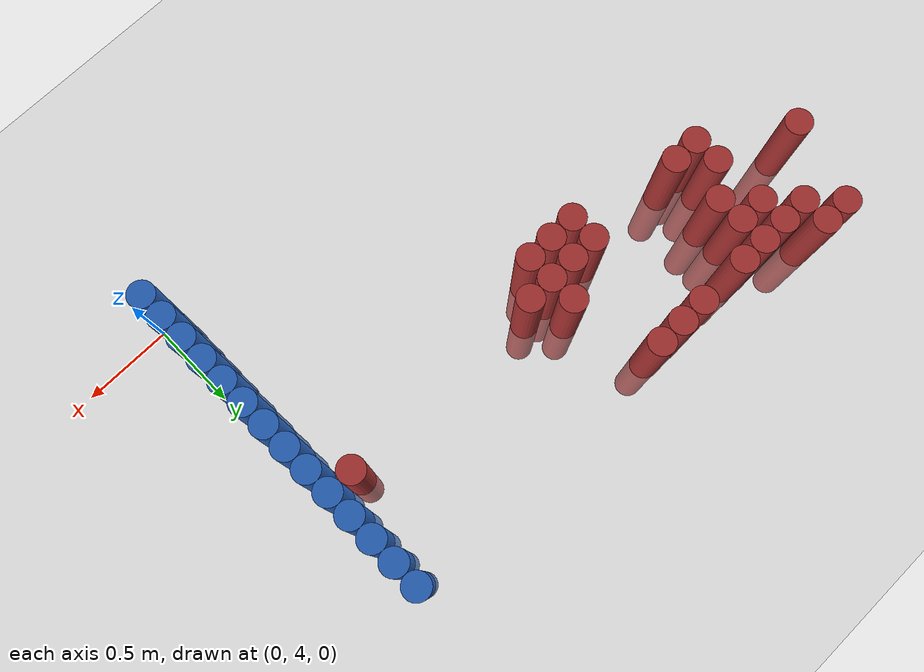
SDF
<sdf version="1.6">
 <world name="default">
  <model name="ground_plane">
   <static>1</static>
   <link name="link">
    <collision name="collision">
     <geometry><plane><normal>0 0 1</normal><size>100 100</size></plane></geometry>
     <surface><friction><ode><mu>100</mu><mu2>50</mu2></ode></friction></surface>
    </collision>
    <visual name="visual">
     <cast_shadows>0</cast_shadows>
     <geometry><plane><normal>0 0 1</normal><size>100 100</size></plane></geometry>
     <material>
      <script><uri>file://media/materials/scripts/gazebo.material</uri><name>Gazebo/Grey</name></script>
     </material>
    </visual>
   </link>
  </model>
  <model name="unit_cylinder_80">
   <static>1</static>
   <pose>-0.075000 3.975000 0.000000 0.000000 0.000000 0.000000</pose>
   <link name="link">
    <inertial>
     <mass>1</mass>
     <inertia><ixx>0.145833</ixx><ixy>0</ixy><ixz>0</ixz><iyy>0.145833</iyy><iyz>0</iyz><izz>0.125</izz></inertia>
    </inertial>
    <collision name="collision">
     <geometry><cylinder><radius>0.075000</radius><length>1</length></cylinder></geometry>
    </collision>
    <visual name="visual">
     <geometry><cylinder><radius>0.075000</radius><length>1</length></cylinder></geometry>
     <material>
      <ambient>0.152000 0.379000 0.720000 1</ambient>
      <diffuse>0.152000 0.379000 0.720000 1</diffuse>
     </material>
     <material>
      <script><name>Gazebo/Grey</name><uri>file://media/materials/scripts/gazebo.material</uri></script>
     </material>
    </visual>
    <sensor name="sensor_contact" type="contact"><contact><collision>collision</collision></contact></sensor>
   </link>
   <plugin filename="gz-sim-touchplugin-system" name="gz::sim::systems::TouchPlugin">
    <target>robot</target>
    <namespace>robot</namespace>
    <time>0.001</time>
    <enabled>true</enabled>
   </plugin>
  </model>
  <model name="unit_cylinder_82">
   <static>1</static>
   <pose>-0.075000 4.125000 0.000000 0.000000 0.000000 0.000000</pose>
   <link name="link">
    <inertial>
     <mass>1</mass>
     <inertia><ixx>0.145833</ixx><ixy>0</ixy><ixz>0</ixz><iyy>0.145833</iyy><iyz>0</iyz><izz>0.125</izz></inertia>
    </inertial>
    <collision name="collision">
     <geometry><cylinder><radius>0.075000</radius><length>1</length></cylinder></geometry>
    </collision>
    <visual name="visual">
     <geometry><cylinder><radius>0.075000</radius><length>1</length></cylinder></geometry>
     <material>
      <ambient>0.152000 0.379000 0.720000 1</ambient>
      <diffuse>0.152000 0.379000 0.720000 1</diffuse>
     </material>
     <material>
      <script><name>Gazebo/Grey</name><uri>file://media/materials/scripts/gazebo.material</uri></script>
     </material>
    </visual>
    <sensor name="sensor_contact" type="contact"><contact><collision>collision</collision></contact></sensor>
   </link>
   <plugin filename="gz-sim-touchplugin-system" name="gz::sim::systems::TouchPlugin">
    <target>robot</target>
    <namespace>robot</namespace>
    <time>0.001</time>
    <enabled>true</enabled>
   </plugin>
  </model>
  <model name="unit_cylinder_84">
   <static>1</static>
   <pose>-0.075000 4.275000 0.000000 0.000000 0.000000 0.000000</pose>
   <link name="link">
    <inertial>
     <mass>1</mass>
     <inertia><ixx>0.145833</ixx><ixy>0</ixy><ixz>0</ixz><iyy>0.145833</iyy><iyz>0</iyz><izz>0.125</izz></inertia>
    </inertial>
    <collision name="collision">
     <geometry><cylinder><radius>0.075000</radius><length>1</length></cylinder></geometry>
    </collision>
    <visual name="visual">
     <geometry><cylinder><radius>0.075000</radius><length>1</length></cylinder></geometry>
     <material>
      <ambient>0.152000 0.379000 0.720000 1</ambient>
      <diffuse>0.152000 0.379000 0.720000 1</diffuse>
     </material>
     <material>
      <script><name>Gazebo/Grey</name><uri>file://media/materials/scripts/gazebo.material</uri></script>
     </material>
    </visual>
    <sensor name="sensor_contact" type="contact"><contact><collision>collision</collision></contact></sensor>
   </link>
   <plugin filename="gz-sim-touchplugin-system" name="gz::sim::systems::TouchPlugin">
    <target>robot</target>
    <namespace>robot</namespace>
    <time>0.001</time>
    <enabled>true</enabled>
   </plugin>
  </model>
  <model name="unit_cylinder_86">
   <static>1</static>
   <pose>-0.075000 4.425000 0.000000 0.000000 0.000000 0.000000</pose>
   <link name="link">
    <inertial>
     <mass>1</mass>
     <inertia><ixx>0.145833</ixx><ixy>0</ixy><ixz>0</ixz><iyy>0.145833</iyy><iyz>0</iyz><izz>0.125</izz></inertia>
    </inertial>
    <collision name="collision">
     <geometry><cylinder><radius>0.075000</radius><length>1</length></cylinder></geometry>
    </collision>
    <visual name="visual">
     <geometry><cylinder><radius>0.075000</radius><length>1</length></cylinder></geometry>
     <material>
      <ambient>0.152000 0.379000 0.720000 1</ambient>
      <diffuse>0.152000 0.379000 0.720000 1</diffuse>
     </material>
     <material>
      <script><name>Gazebo/Grey</name><uri>file://media/materials/scripts/gazebo.material</uri></script>
     </material>
    </visual>
    <sensor name="sensor_contact" type="contact"><contact><collision>collision</collision></contact></sensor>
   </link>
   <plugin filename="gz-sim-touchplugin-system" name="gz::sim::systems::TouchPlugin">
    <target>robot</target>
    <namespace>robot</namespace>
    <time>0.001</time>
    <enabled>true</enabled>
   </plugin>
  </model>
  <model name="unit_cylinder_88">
   <static>1</static>
   <pose>-0.075000 4.575000 0.000000 0.000000 0.000000 0.000000</pose>
   <link name="link">
    <inertial>
     <mass>1</mass>
     <inertia><ixx>0.145833</ixx><ixy>0</ixy><ixz>0</ixz><iyy>0.145833</iyy><iyz>0</iyz><izz>0.125</izz></inertia>
    </inertial>
    <collision name="collision">
     <geometry><cylinder><radius>0.075000</radius><length>1</length></cylinder></geometry>
    </collision>
    <visual name="visual">
     <geometry><cylinder><radius>0.075000</radius><length>1</length></cylinder></geometry>
     <material>
      <ambient>0.152000 0.379000 0.720000 1</ambient>
      <diffuse>0.152000 0.379000 0.720000 1</diffuse>
     </material>
     <material>
      <script><name>Gazebo/Grey</name><uri>file://media/materials/scripts/gazebo.material</uri></script>
     </material>
    </visual>
    <sensor name="sensor_contact" type="contact"><contact><collision>collision</collision></contact></sensor>
   </link>
   <plugin filename="gz-sim-touchplugin-system" name="gz::sim::systems::TouchPlugin">
    <target>robot</target>
    <namespace>robot</namespace>
    <time>0.001</time>
    <enabled>true</enabled>
   </plugin>
  </model>
  <model name="unit_cylinder_90">
   <static>1</static>
   <pose>-0.075000 4.725000 0.000000 0.000000 0.000000 0.000000</pose>
   <link name="link">
    <inertial>
     <mass>1</mass>
     <inertia><ixx>0.145833</ixx><ixy>0</ixy><ixz>0</ixz><iyy>0.145833</iyy><iyz>0</iyz><izz>0.125</izz></inertia>
    </inertial>
    <collision name="collision">
     <geometry><cylinder><radius>0.075000</radius><length>1</length></cylinder></geometry>
    </collision>
    <visual name="visual">
     <geometry><cylinder><radius>0.075000</radius><length>1</length></cylinder></geometry>
     <material>
      <ambient>0.152000 0.379000 0.720000 1</ambient>
      <diffuse>0.152000 0.379000 0.720000 1</diffuse>
     </material>
     <material>
      <script><name>Gazebo/Grey</name><uri>file://media/materials/scripts/gazebo.material</uri></script>
     </material>
    </visual>
    <sensor name="sensor_contact" type="contact"><contact><collision>collision</collision></contact></sensor>
   </link>
   <plugin filename="gz-sim-touchplugin-system" name="gz::sim::systems::TouchPlugin">
    <target>robot</target>
    <namespace>robot</namespace>
    <time>0.001</time>
    <enabled>true</enabled>
   </plugin>
  </model>
  <model name="unit_cylinder_92">
   <static>1</static>
   <pose>-0.075000 4.875000 0.000000 0.000000 0.000000 0.000000</pose>
   <link name="link">
    <inertial>
     <mass>1</mass>
     <inertia><ixx>0.145833</ixx><ixy>0</ixy><ixz>0</ixz><iyy>0.145833</iyy><iyz>0</iyz><izz>0.125</izz></inertia>
    </inertial>
    <collision name="collision">
     <geometry><cylinder><radius>0.075000</radius><length>1</length></cylinder></geometry>
    </collision>
    <visual name="visual">
     <geometry><cylinder><radius>0.075000</radius><length>1</length></cylinder></geometry>
     <material>
      <ambient>0.152000 0.379000 0.720000 1</ambient>
      <diffuse>0.152000 0.379000 0.720000 1</diffuse>
     </material>
     <material>
      <script><name>Gazebo/Grey</name><uri>file://media/materials/scripts/gazebo.material</uri></script>
     </material>
    </visual>
    <sensor name="sensor_contact" type="contact"><contact><collision>collision</collision></contact></sensor>
   </link>
   <plugin filename="gz-sim-touchplugin-system" name="gz::sim::systems::TouchPlugin">
    <target>robot</target>
    <namespace>robot</namespace>
    <time>0.001</time>
    <enabled>true</enabled>
   </plugin>
  </model>
  <model name="unit_cylinder_94">
   <static>1</static>
   <pose>-0.075000 5.025000 0.000000 0.000000 0.000000 0.000000</pose>
   <link name="link">
    <inertial>
     <mass>1</mass>
     <inertia><ixx>0.145833</ixx><ixy>0</ixy><ixz>0</ixz><iyy>0.145833</iyy><iyz>0</iyz><izz>0.125</izz></inertia>
    </inertial>
    <collision name="collision">
     <geometry><cylinder><radius>0.075000</radius><length>1</length></cylinder></geometry>
    </collision>
    <visual name="visual">
     <geometry><cylinder><radius>0.075000</radius><length>1</length></cylinder></geometry>
     <material>
      <ambient>0.152000 0.379000 0.720000 1</ambient>
      <diffuse>0.152000 0.379000 0.720000 1</diffuse>
     </material>
     <material>
      <script><name>Gazebo/Grey</name><uri>file://media/materials/scripts/gazebo.material</uri></script>
     </material>
    </visual>
    <sensor name="sensor_contact" type="contact"><contact><collision>collision</collision></contact></sensor>
   </link>
   <plugin filename="gz-sim-touchplugin-system" name="gz::sim::systems::TouchPlugin">
    <target>robot</target>
    <namespace>robot</namespace>
    <time>0.001</time>
    <enabled>true</enabled>
   </plugin>
  </model>
  <model name="unit_cylinder_200">
   <static>1</static>
   <pose>-3.075000 5.625000 0.000000 0.000000 0.000000 0.000000</pose>
   <link name="link">
    <inertial>
     <mass>1</mass>
     <inertia><ixx>0.145833</ixx><ixy>0</ixy><ixz>0</ixz><iyy>0.145833</iyy><iyz>0</iyz><izz>0.125</izz></inertia>
    </inertial>
    <collision name="collision">
     <geometry><cylinder><radius>0.075000</radius><length>1</length></cylinder></geometry>
    </collision>
    <visual name="visual">
     <geometry><cylinder><radius>0.075000</radius><length>1</length></cylinder></geometry>
     <material>
      <ambient>0.648000 0.192000 0.192000 1</ambient>
      <diffuse>0.648000 0.192000 0.192000 1</diffuse>
     </material>
     <material>
      <script><name>Gazebo/Grey</name><uri>file://media/materials/scripts/gazebo.material</uri></script>
     </material>
    </visual>
    <sensor name="sensor_contact" type="contact"><contact><collision>collision</collision></contact></sensor>
   </link>
   <plugin filename="gz-sim-touchplugin-system" name="gz::sim::systems::TouchPlugin">
    <target>robot</target>
    <namespace>robot</namespace>
    <time>0.001</time>
    <enabled>true</enabled>
   </plugin>
  </model>
  <model name="unit_cylinder_207">
   <static>1</static>
   <pose>-2.925000 6.075000 0.000000 0.000000 0.000000 0.000000</pose>
   <link name="link">
    <inertial>
     <mass>1</mass>
     <inertia><ixx>0.145833</ixx><ixy>0</ixy><ixz>0</ixz><iyy>0.145833</iyy><iyz>0</iyz><izz>0.125</izz></inertia>
    </inertial>
    <collision name="collision">
     <geometry><cylinder><radius>0.075000</radius><length>1</length></cylinder></geometry>
    </collision>
    <visual name="visual">
     <geometry><cylinder><radius>0.075000</radius><length>1</length></cylinder></geometry>
     <material>
      <ambient>0.648000 0.192000 0.192000 1</ambient>
      <diffuse>0.648000 0.192000 0.192000 1</diffuse>
     </material>
     <material>
      <script><name>Gazebo/Grey</name><uri>file://media/materials/scripts/gazebo.material</uri></script>
     </material>
    </visual>
    <sensor name="sensor_contact" type="contact"><contact><collision>collision</collision></contact></sensor>
   </link>
   <plugin filename="gz-sim-touchplugin-system" name="gz::sim::systems::TouchPlugin">
    <target>robot</target>
    <namespace>robot</namespace>
    <time>0.001</time>
    <enabled>true</enabled>
   </plugin>
  </model>
  <model name="unit_cylinder_214">
   <static>1</static>
   <pose>-2.775000 5.925000 0.000000 0.000000 0.000000 0.000000</pose>
   <link name="link">
    <inertial>
     <mass>1</mass>
     <inertia><ixx>0.145833</ixx><ixy>0</ixy><ixz>0</ixz><iyy>0.145833</iyy><iyz>0</iyz><izz>0.125</izz></inertia>
    </inertial>
    <collision name="collision">
     <geometry><cylinder><radius>0.075000</radius><length>1</length></cylinder></geometry>
    </collision>
    <visual name="visual">
     <geometry><cylinder><radius>0.075000</radius><length>1</length></cylinder></geometry>
     <material>
      <ambient>0.648000 0.192000 0.192000 1</ambient>
      <diffuse>0.648000 0.192000 0.192000 1</diffuse>
     </material>
     <material>
      <script><name>Gazebo/Grey</name><uri>file://media/materials/scripts/gazebo.material</uri></script>
     </material>
    </visual>
    <sensor name="sensor_contact" type="contact"><contact><collision>collision</collision></contact></sensor>
   </link>
   <plugin filename="gz-sim-touchplugin-system" name="gz::sim::systems::TouchPlugin">
    <target>robot</target>
    <namespace>robot</namespace>
    <time>0.001</time>
    <enabled>true</enabled>
   </plugin>
  </model>
  <model name="unit_cylinder_215">
   <static>1</static>
   <pose>-2.775000 6.075000 0.000000 0.000000 0.000000 0.000000</pose>
   <link name="link">
    <inertial>
     <mass>1</mass>
     <inertia><ixx>0.145833</ixx><ixy>0</ixy><ixz>0</ixz><iyy>0.145833</iyy><iyz>0</iyz><izz>0.125</izz></inertia>
    </inertial>
    <collision name="collision">
     <geometry><cylinder><radius>0.075000</radius><length>1</length></cylinder></geometry>
    </collision>
    <visual name="visual">
     <geometry><cylinder><radius>0.075000</radius><length>1</length></cylinder></geometry>
     <material>
      <ambient>0.648000 0.192000 0.192000 1</ambient>
      <diffuse>0.648000 0.192000 0.192000 1</diffuse>
     </material>
     <material>
      <script><name>Gazebo/Grey</name><uri>file://media/materials/scripts/gazebo.material</uri></script>
     </material>
    </visual>
    <sensor name="sensor_contact" type="contact"><contact><collision>collision</collision></contact></sensor>
   </link>
   <plugin filename="gz-sim-touchplugin-system" name="gz::sim::systems::TouchPlugin">
    <target>robot</target>
    <namespace>robot</namespace>
    <time>0.001</time>
    <enabled>true</enabled>
   </plugin>
  </model>
  <model name="unit_cylinder_220">
   <static>1</static>
   <pose>-2.625000 5.325000 0.000000 0.000000 0.000000 0.000000</pose>
   <link name="link">
    <inertial>
     <mass>1</mass>
     <inertia><ixx>0.145833</ixx><ixy>0</ixy><ixz>0</ixz><iyy>0.145833</iyy><iyz>0</iyz><izz>0.125</izz></inertia>
    </inertial>
    <collision name="collision">
     <geometry><cylinder><radius>0.075000</radius><length>1</length></cylinder></geometry>
    </collision>
    <visual name="visual">
     <geometry><cylinder><radius>0.075000</radius><length>1</length></cylinder></geometry>
     <material>
      <ambient>0.648000 0.192000 0.192000 1</ambient>
      <diffuse>0.648000 0.192000 0.192000 1</diffuse>
     </material>
     <material>
      <script><name>Gazebo/Grey</name><uri>file://media/materials/scripts/gazebo.material</uri></script>
     </material>
    </visual>
    <sensor name="sensor_contact" type="contact"><contact><collision>collision</collision></contact></sensor>
   </link>
   <plugin filename="gz-sim-touchplugin-system" name="gz::sim::systems::TouchPlugin">
    <target>robot</target>
    <namespace>robot</namespace>
    <time>0.001</time>
    <enabled>true</enabled>
   </plugin>
  </model>
  <model name="unit_cylinder_221">
   <static>1</static>
   <pose>-2.625000 5.475000 0.000000 0.000000 0.000000 0.000000</pose>
   <link name="link">
    <inertial>
     <mass>1</mass>
     <inertia><ixx>0.145833</ixx><ixy>0</ixy><ixz>0</ixz><iyy>0.145833</iyy><iyz>0</iyz><izz>0.125</izz></inertia>
    </inertial>
    <collision name="collision">
     <geometry><cylinder><radius>0.075000</radius><length>1</length></cylinder></geometry>
    </collision>
    <visual name="visual">
     <geometry><cylinder><radius>0.075000</radius><length>1</length></cylinder></geometry>
     <material>
      <ambient>0.648000 0.192000 0.192000 1</ambient>
      <diffuse>0.648000 0.192000 0.192000 1</diffuse>
     </material>
     <material>
      <script><name>Gazebo/Grey</name><uri>file://media/materials/scripts/gazebo.material</uri></script>
     </material>
    </visual>
    <sensor name="sensor_contact" type="contact"><contact><collision>collision</collision></contact></sensor>
   </link>
   <plugin filename="gz-sim-touchplugin-system" name="gz::sim::systems::TouchPlugin">
    <target>robot</target>
    <namespace>robot</namespace>
    <time>0.001</time>
    <enabled>true</enabled>
   </plugin>
  </model>
  <model name="unit_cylinder_222">
   <static>1</static>
   <pose>-2.625000 5.775000 0.000000 0.000000 0.000000 0.000000</pose>
   <link name="link">
    <inertial>
     <mass>1</mass>
     <inertia><ixx>0.145833</ixx><ixy>0</ixy><ixz>0</ixz><iyy>0.145833</iyy><iyz>0</iyz><izz>0.125</izz></inertia>
    </inertial>
    <collision name="collision">
     <geometry><cylinder><radius>0.075000</radius><length>1</length></cylinder></geometry>
    </collision>
    <visual name="visual">
     <geometry><cylinder><radius>0.075000</radius><length>1</length></cylinder></geometry>
     <material>
      <ambient>0.648000 0.192000 0.192000 1</ambient>
      <diffuse>0.648000 0.192000 0.192000 1</diffuse>
     </material>
     <material>
      <script><name>Gazebo/Grey</name><uri>file://media/materials/scripts/gazebo.material</uri></script>
     </material>
    </visual>
    <sensor name="sensor_contact" type="contact"><contact><collision>collision</collision></contact></sensor>
   </link>
   <plugin filename="gz-sim-touchplugin-system" name="gz::sim::systems::TouchPlugin">
    <target>robot</target>
    <namespace>robot</namespace>
    <time>0.001</time>
    <enabled>true</enabled>
   </plugin>
  </model>
  <model name="unit_cylinder_223">
   <static>1</static>
   <pose>-2.625000 5.925000 0.000000 0.000000 0.000000 0.000000</pose>
   <link name="link">
    <inertial>
     <mass>1</mass>
     <inertia><ixx>0.145833</ixx><ixy>0</ixy><ixz>0</ixz><iyy>0.145833</iyy><iyz>0</iyz><izz>0.125</izz></inertia>
    </inertial>
    <collision name="collision">
     <geometry><cylinder><radius>0.075000</radius><length>1</length></cylinder></geometry>
    </collision>
    <visual name="visual">
     <geometry><cylinder><radius>0.075000</radius><length>1</length></cylinder></geometry>
     <material>
      <ambient>0.648000 0.192000 0.192000 1</ambient>
      <diffuse>0.648000 0.192000 0.192000 1</diffuse>
     </material>
     <material>
      <script><name>Gazebo/Grey</name><uri>file://media/materials/scripts/gazebo.material</uri></script>
     </material>
    </visual>
    <sensor name="sensor_contact" type="contact"><contact><collision>collision</collision></contact></sensor>
   </link>
   <plugin filename="gz-sim-touchplugin-system" name="gz::sim::systems::TouchPlugin">
    <target>robot</target>
    <namespace>robot</namespace>
    <time>0.001</time>
    <enabled>true</enabled>
   </plugin>
  </model>
  <model name="unit_cylinder_231">
   <static>1</static>
   <pose>-2.475000 5.325000 0.000000 0.000000 0.000000 0.000000</pose>
   <link name="link">
    <inertial>
     <mass>1</mass>
     <inertia><ixx>0.145833</ixx><ixy>0</ixy><ixz>0</ixz><iyy>0.145833</iyy><iyz>0</iyz><izz>0.125</izz></inertia>
    </inertial>
    <collision name="collision">
     <geometry><cylinder><radius>0.075000</radius><length>1</length></cylinder></geometry>
    </collision>
    <visual name="visual">
     <geometry><cylinder><radius>0.075000</radius><length>1</length></cylinder></geometry>
     <material>
      <ambient>0.648000 0.192000 0.192000 1</ambient>
      <diffuse>0.648000 0.192000 0.192000 1</diffuse>
     </material>
     <material>
      <script><name>Gazebo/Grey</name><uri>file://media/materials/scripts/gazebo.material</uri></script>
     </material>
    </visual>
    <sensor name="sensor_contact" type="contact"><contact><collision>collision</collision></contact></sensor>
   </link>
   <plugin filename="gz-sim-touchplugin-system" name="gz::sim::systems::TouchPlugin">
    <target>robot</target>
    <namespace>robot</namespace>
    <time>0.001</time>
    <enabled>true</enabled>
   </plugin>
  </model>
  <model name="unit_cylinder_232">
   <static>1</static>
   <pose>-2.475000 5.625000 0.000000 0.000000 0.000000 0.000000</pose>
   <link name="link">
    <inertial>
     <mass>1</mass>
     <inertia><ixx>0.145833</ixx><ixy>0</ixy><ixz>0</ixz><iyy>0.145833</iyy><iyz>0</iyz><izz>0.125</izz></inertia>
    </inertial>
    <collision name="collision">
     <geometry><cylinder><radius>0.075000</radius><length>1</length></cylinder></geometry>
    </collision>
    <visual name="visual">
     <geometry><cylinder><radius>0.075000</radius><length>1</length></cylinder></geometry>
     <material>
      <ambient>0.648000 0.192000 0.192000 1</ambient>
      <diffuse>0.648000 0.192000 0.192000 1</diffuse>
     </material>
     <material>
      <script><name>Gazebo/Grey</name><uri>file://media/materials/scripts/gazebo.material</uri></script>
     </material>
    </visual>
    <sensor name="sensor_contact" type="contact"><contact><collision>collision</collision></contact></sensor>
   </link>
   <plugin filename="gz-sim-touchplugin-system" name="gz::sim::systems::TouchPlugin">
    <target>robot</target>
    <namespace>robot</namespace>
    <time>0.001</time>
    <enabled>true</enabled>
   </plugin>
  </model>
  <model name="unit_cylinder_233">
   <static>1</static>
   <pose>-2.475000 5.775000 0.000000 0.000000 0.000000 0.000000</pose>
   <link name="link">
    <inertial>
     <mass>1</mass>
     <inertia><ixx>0.145833</ixx><ixy>0</ixy><ixz>0</ixz><iyy>0.145833</iyy><iyz>0</iyz><izz>0.125</izz></inertia>
    </inertial>
    <collision name="collision">
     <geometry><cylinder><radius>0.075000</radius><length>1</length></cylinder></geometry>
    </collision>
    <visual name="visual">
     <geometry><cylinder><radius>0.075000</radius><length>1</length></cylinder></geometry>
     <material>
      <ambient>0.648000 0.192000 0.192000 1</ambient>
      <diffuse>0.648000 0.192000 0.192000 1</diffuse>
     </material>
     <material>
      <script><name>Gazebo/Grey</name><uri>file://media/materials/scripts/gazebo.material</uri></script>
     </material>
    </visual>
    <sensor name="sensor_contact" type="contact"><contact><collision>collision</collision></contact></sensor>
   </link>
   <plugin filename="gz-sim-touchplugin-system" name="gz::sim::systems::TouchPlugin">
    <target>robot</target>
    <namespace>robot</namespace>
    <time>0.001</time>
    <enabled>true</enabled>
   </plugin>
  </model>
  <model name="unit_cylinder_234">
   <static>1</static>
   <pose>-2.475000 5.925000 0.000000 0.000000 0.000000 0.000000</pose>
   <link name="link">
    <inertial>
     <mass>1</mass>
     <inertia><ixx>0.145833</ixx><ixy>0</ixy><ixz>0</ixz><iyy>0.145833</iyy><iyz>0</iyz><izz>0.125</izz></inertia>
    </inertial>
    <collision name="collision">
     <geometry><cylinder><radius>0.075000</radius><length>1</length></cylinder></geometry>
    </collision>
    <visual name="visual">
     <geometry><cylinder><radius>0.075000</radius><length>1</length></cylinder></geometry>
     <material>
      <ambient>0.648000 0.192000 0.192000 1</ambient>
      <diffuse>0.648000 0.192000 0.192000 1</diffuse>
     </material>
     <material>
      <script><name>Gazebo/Grey</name><uri>file://media/materials/scripts/gazebo.material</uri></script>
     </material>
    </visual>
    <sensor name="sensor_contact" type="contact"><contact><collision>collision</collision></contact></sensor>
   </link>
   <plugin filename="gz-sim-touchplugin-system" name="gz::sim::systems::TouchPlugin">
    <target>robot</target>
    <namespace>robot</namespace>
    <time>0.001</time>
    <enabled>true</enabled>
   </plugin>
  </model>
  <model name="unit_cylinder_245">
   <static>1</static>
   <pose>-2.325000 5.925000 0.000000 0.000000 0.000000 0.000000</pose>
   <link name="link">
    <inertial>
     <mass>1</mass>
     <inertia><ixx>0.145833</ixx><ixy>0</ixy><ixz>0</ixz><iyy>0.145833</iyy><iyz>0</iyz><izz>0.125</izz></inertia>
    </inertial>
    <collision name="collision">
     <geometry><cylinder><radius>0.075000</radius><length>1</length></cylinder></geometry>
    </collision>
    <visual name="visual">
     <geometry><cylinder><radius>0.075000</radius><length>1</length></cylinder></geometry>
     <material>
      <ambient>0.648000 0.192000 0.192000 1</ambient>
      <diffuse>0.648000 0.192000 0.192000 1</diffuse>
     </material>
     <material>
      <script><name>Gazebo/Grey</name><uri>file://media/materials/scripts/gazebo.material</uri></script>
     </material>
    </visual>
    <sensor name="sensor_contact" type="contact"><contact><collision>collision</collision></contact></sensor>
   </link>
   <plugin filename="gz-sim-touchplugin-system" name="gz::sim::systems::TouchPlugin">
    <target>robot</target>
    <namespace>robot</namespace>
    <time>0.001</time>
    <enabled>true</enabled>
   </plugin>
  </model>
  <model name="unit_cylinder_256">
   <static>1</static>
   <pose>-2.025000 5.925000 0.000000 0.000000 0.000000 0.000000</pose>
   <link name="link">
    <inertial>
     <mass>1</mass>
     <inertia><ixx>0.145833</ixx><ixy>0</ixy><ixz>0</ixz><iyy>0.145833</iyy><iyz>0</iyz><izz>0.125</izz></inertia>
    </inertial>
    <collision name="collision">
     <geometry><cylinder><radius>0.075000</radius><length>1</length></cylinder></geometry>
    </collision>
    <visual name="visual">
     <geometry><cylinder><radius>0.075000</radius><length>1</length></cylinder></geometry>
     <material>
      <ambient>0.648000 0.192000 0.192000 1</ambient>
      <diffuse>0.648000 0.192000 0.192000 1</diffuse>
     </material>
     <material>
      <script><name>Gazebo/Grey</name><uri>file://media/materials/scripts/gazebo.material</uri></script>
     </material>
    </visual>
    <sensor name="sensor_contact" type="contact"><contact><collision>collision</collision></contact></sensor>
   </link>
   <plugin filename="gz-sim-touchplugin-system" name="gz::sim::systems::TouchPlugin">
    <target>robot</target>
    <namespace>robot</namespace>
    <time>0.001</time>
    <enabled>true</enabled>
   </plugin>
  </model>
  <model name="unit_cylinder_260">
   <static>1</static>
   <pose>-1.875000 5.175000 0.000000 0.000000 0.000000 0.000000</pose>
   <link name="link">
    <inertial>
     <mass>1</mass>
     <inertia><ixx>0.145833</ixx><ixy>0</ixy><ixz>0</ixz><iyy>0.145833</iyy><iyz>0</iyz><izz>0.125</izz></inertia>
    </inertial>
    <collision name="collision">
     <geometry><cylinder><radius>0.075000</radius><length>1</length></cylinder></geometry>
    </collision>
    <visual name="visual">
     <geometry><cylinder><radius>0.075000</radius><length>1</length></cylinder></geometry>
     <material>
      <ambient>0.648000 0.192000 0.192000 1</ambient>
      <diffuse>0.648000 0.192000 0.192000 1</diffuse>
     </material>
     <material>
      <script><name>Gazebo/Grey</name><uri>file://media/materials/scripts/gazebo.material</uri></script>
     </material>
    </visual>
    <sensor name="sensor_contact" type="contact"><contact><collision>collision</collision></contact></sensor>
   </link>
   <plugin filename="gz-sim-touchplugin-system" name="gz::sim::systems::TouchPlugin">
    <target>robot</target>
    <namespace>robot</namespace>
    <time>0.001</time>
    <enabled>true</enabled>
   </plugin>
  </model>
  <model name="unit_cylinder_261">
   <static>1</static>
   <pose>-1.875000 5.325000 0.000000 0.000000 0.000000 0.000000</pose>
   <link name="link">
    <inertial>
     <mass>1</mass>
     <inertia><ixx>0.145833</ixx><ixy>0</ixy><ixz>0</ixz><iyy>0.145833</iyy><iyz>0</iyz><izz>0.125</izz></inertia>
    </inertial>
    <collision name="collision">
     <geometry><cylinder><radius>0.075000</radius><length>1</length></cylinder></geometry>
    </collision>
    <visual name="visual">
     <geometry><cylinder><radius>0.075000</radius><length>1</length></cylinder></geometry>
     <material>
      <ambient>0.648000 0.192000 0.192000 1</ambient>
      <diffuse>0.648000 0.192000 0.192000 1</diffuse>
     </material>
     <material>
      <script><name>Gazebo/Grey</name><uri>file://media/materials/scripts/gazebo.material</uri></script>
     </material>
    </visual>
    <sensor name="sensor_contact" type="contact"><contact><collision>collision</collision></contact></sensor>
   </link>
   <plugin filename="gz-sim-touchplugin-system" name="gz::sim::systems::TouchPlugin">
    <target>robot</target>
    <namespace>robot</namespace>
    <time>0.001</time>
    <enabled>true</enabled>
   </plugin>
  </model>
  <model name="unit_cylinder_262">
   <static>1</static>
   <pose>-1.875000 5.925000 0.000000 0.000000 0.000000 0.000000</pose>
   <link name="link">
    <inertial>
     <mass>1</mass>
     <inertia><ixx>0.145833</ixx><ixy>0</ixy><ixz>0</ixz><iyy>0.145833</iyy><iyz>0</iyz><izz>0.125</izz></inertia>
    </inertial>
    <collision name="collision">
     <geometry><cylinder><radius>0.075000</radius><length>1</length></cylinder></geometry>
    </collision>
    <visual name="visual">
     <geometry><cylinder><radius>0.075000</radius><length>1</length></cylinder></geometry>
     <material>
      <ambient>0.648000 0.192000 0.192000 1</ambient>
      <diffuse>0.648000 0.192000 0.192000 1</diffuse>
     </material>
     <material>
      <script><name>Gazebo/Grey</name><uri>file://media/materials/scripts/gazebo.material</uri></script>
     </material>
    </visual>
    <sensor name="sensor_contact" type="contact"><contact><collision>collision</collision></contact></sensor>
   </link>
   <plugin filename="gz-sim-touchplugin-system" name="gz::sim::systems::TouchPlugin">
    <target>robot</target>
    <namespace>robot</namespace>
    <time>0.001</time>
    <enabled>true</enabled>
   </plugin>
  </model>
  <model name="unit_cylinder_264">
   <static>1</static>
   <pose>-1.725000 5.175000 0.000000 0.000000 0.000000 0.000000</pose>
   <link name="link">
    <inertial>
     <mass>1</mass>
     <inertia><ixx>0.145833</ixx><ixy>0</ixy><ixz>0</ixz><iyy>0.145833</iyy><iyz>0</iyz><izz>0.125</izz></inertia>
    </inertial>
    <collision name="collision">
     <geometry><cylinder><radius>0.075000</radius><length>1</length></cylinder></geometry>
    </collision>
    <visual name="visual">
     <geometry><cylinder><radius>0.075000</radius><length>1</length></cylinder></geometry>
     <material>
      <ambient>0.648000 0.192000 0.192000 1</ambient>
      <diffuse>0.648000 0.192000 0.192000 1</diffuse>
     </material>
     <material>
      <script><name>Gazebo/Grey</name><uri>file://media/materials/scripts/gazebo.material</uri></script>
     </material>
    </visual>
    <sensor name="sensor_contact" type="contact"><contact><collision>collision</collision></contact></sensor>
   </link>
   <plugin filename="gz-sim-touchplugin-system" name="gz::sim::systems::TouchPlugin">
    <target>robot</target>
    <namespace>robot</namespace>
    <time>0.001</time>
    <enabled>true</enabled>
   </plugin>
  </model>
  <model name="unit_cylinder_265">
   <static>1</static>
   <pose>-1.725000 5.325000 0.000000 0.000000 0.000000 0.000000</pose>
   <link name="link">
    <inertial>
     <mass>1</mass>
     <inertia><ixx>0.145833</ixx><ixy>0</ixy><ixz>0</ixz><iyy>0.145833</iyy><iyz>0</iyz><izz>0.125</izz></inertia>
    </inertial>
    <collision name="collision">
     <geometry><cylinder><radius>0.075000</radius><length>1</length></cylinder></geometry>
    </collision>
    <visual name="visual">
     <geometry><cylinder><radius>0.075000</radius><length>1</length></cylinder></geometry>
     <material>
      <ambient>0.648000 0.192000 0.192000 1</ambient>
      <diffuse>0.648000 0.192000 0.192000 1</diffuse>
     </material>
     <material>
      <script><name>Gazebo/Grey</name><uri>file://media/materials/scripts/gazebo.material</uri></script>
     </material>
    </visual>
    <sensor name="sensor_contact" type="contact"><contact><collision>collision</collision></contact></sensor>
   </link>
   <plugin filename="gz-sim-touchplugin-system" name="gz::sim::systems::TouchPlugin">
    <target>robot</target>
    <namespace>robot</namespace>
    <time>0.001</time>
    <enabled>true</enabled>
   </plugin>
  </model>
  <model name="unit_cylinder_266">
   <static>1</static>
   <pose>-1.725000 5.925000 0.000000 0.000000 0.000000 0.000000</pose>
   <link name="link">
    <inertial>
     <mass>1</mass>
     <inertia><ixx>0.145833</ixx><ixy>0</ixy><ixz>0</ixz><iyy>0.145833</iyy><iyz>0</iyz><izz>0.125</izz></inertia>
    </inertial>
    <collision name="collision">
     <geometry><cylinder><radius>0.075000</radius><length>1</length></cylinder></geometry>
    </collision>
    <visual name="visual">
     <geometry><cylinder><radius>0.075000</radius><length>1</length></cylinder></geometry>
     <material>
      <ambient>0.648000 0.192000 0.192000 1</ambient>
      <diffuse>0.648000 0.192000 0.192000 1</diffuse>
     </material>
     <material>
      <script><name>Gazebo/Grey</name><uri>file://media/materials/scripts/gazebo.material</uri></script>
     </material>
    </visual>
    <sensor name="sensor_contact" type="contact"><contact><collision>collision</collision></contact></sensor>
   </link>
   <plugin filename="gz-sim-touchplugin-system" name="gz::sim::systems::TouchPlugin">
    <target>robot</target>
    <namespace>robot</namespace>
    <time>0.001</time>
    <enabled>true</enabled>
   </plugin>
  </model>
  <model name="unit_cylinder_269">
   <static>1</static>
   <pose>-1.575000 5.175000 0.000000 0.000000 0.000000 0.000000</pose>
   <link name="link">
    <inertial>
     <mass>1</mass>
     <inertia><ixx>0.145833</ixx><ixy>0</ixy><ixz>0</ixz><iyy>0.145833</iyy><iyz>0</iyz><izz>0.125</izz></inertia>
    </inertial>
    <collision name="collision">
     <geometry><cylinder><radius>0.075000</radius><length>1</length></cylinder></geometry>
    </collision>
    <visual name="visual">
     <geometry><cylinder><radius>0.075000</radius><length>1</length></cylinder></geometry>
     <material>
      <ambient>0.648000 0.192000 0.192000 1</ambient>
      <diffuse>0.648000 0.192000 0.192000 1</diffuse>
     </material>
     <material>
      <script><name>Gazebo/Grey</name><uri>file://media/materials/scripts/gazebo.material</uri></script>
     </material>
    </visual>
    <sensor name="sensor_contact" type="contact"><contact><collision>collision</collision></contact></sensor>
   </link>
   <plugin filename="gz-sim-touchplugin-system" name="gz::sim::systems::TouchPlugin">
    <target>robot</target>
    <namespace>robot</namespace>
    <time>0.001</time>
    <enabled>true</enabled>
   </plugin>
  </model>
  <model name="unit_cylinder_270">
   <static>1</static>
   <pose>-1.575000 5.325000 0.000000 0.000000 0.000000 0.000000</pose>
   <link name="link">
    <inertial>
     <mass>1</mass>
     <inertia><ixx>0.145833</ixx><ixy>0</ixy><ixz>0</ixz><iyy>0.145833</iyy><iyz>0</iyz><izz>0.125</izz></inertia>
    </inertial>
    <collision name="collision">
     <geometry><cylinder><radius>0.075000</radius><length>1</length></cylinder></geometry>
    </collision>
    <visual name="visual">
     <geometry><cylinder><radius>0.075000</radius><length>1</length></cylinder></geometry>
     <material>
      <ambient>0.648000 0.192000 0.192000 1</ambient>
      <diffuse>0.648000 0.192000 0.192000 1</diffuse>
     </material>
     <material>
      <script><name>Gazebo/Grey</name><uri>file://media/materials/scripts/gazebo.material</uri></script>
     </material>
    </visual>
    <sensor name="sensor_contact" type="contact"><contact><collision>collision</collision></contact></sensor>
   </link>
   <plugin filename="gz-sim-touchplugin-system" name="gz::sim::systems::TouchPlugin">
    <target>robot</target>
    <namespace>robot</namespace>
    <time>0.001</time>
    <enabled>true</enabled>
   </plugin>
  </model>
  <model name="unit_cylinder_271">
   <static>1</static>
   <pose>-1.575000 5.475000 0.000000 0.000000 0.000000 0.000000</pose>
   <link name="link">
    <inertial>
     <mass>1</mass>
     <inertia><ixx>0.145833</ixx><ixy>0</ixy><ixz>0</ixz><iyy>0.145833</iyy><iyz>0</iyz><izz>0.125</izz></inertia>
    </inertial>
    <collision name="collision">
     <geometry><cylinder><radius>0.075000</radius><length>1</length></cylinder></geometry>
    </collision>
    <visual name="visual">
     <geometry><cylinder><radius>0.075000</radius><length>1</length></cylinder></geometry>
     <material>
      <ambient>0.648000 0.192000 0.192000 1</ambient>
      <diffuse>0.648000 0.192000 0.192000 1</diffuse>
     </material>
     <material>
      <script><name>Gazebo/Grey</name><uri>file://media/materials/scripts/gazebo.material</uri></script>
     </material>
    </visual>
    <sensor name="sensor_contact" type="contact"><contact><collision>collision</collision></contact></sensor>
   </link>
   <plugin filename="gz-sim-touchplugin-system" name="gz::sim::systems::TouchPlugin">
    <target>robot</target>
    <namespace>robot</namespace>
    <time>0.001</time>
    <enabled>true</enabled>
   </plugin>
  </model>
  <model name="unit_cylinder_274">
   <static>1</static>
   <pose>-1.425000 5.325000 0.000000 0.000000 0.000000 0.000000</pose>
   <link name="link">
    <inertial>
     <mass>1</mass>
     <inertia><ixx>0.145833</ixx><ixy>0</ixy><ixz>0</ixz><iyy>0.145833</iyy><iyz>0</iyz><izz>0.125</izz></inertia>
    </inertial>
    <collision name="collision">
     <geometry><cylinder><radius>0.075000</radius><length>1</length></cylinder></geometry>
    </collision>
    <visual name="visual">
     <geometry><cylinder><radius>0.075000</radius><length>1</length></cylinder></geometry>
     <material>
      <ambient>0.648000 0.192000 0.192000 1</ambient>
      <diffuse>0.648000 0.192000 0.192000 1</diffuse>
     </material>
     <material>
      <script><name>Gazebo/Grey</name><uri>file://media/materials/scripts/gazebo.material</uri></script>
     </material>
    </visual>
    <sensor name="sensor_contact" type="contact"><contact><collision>collision</collision></contact></sensor>
   </link>
   <plugin filename="gz-sim-touchplugin-system" name="gz::sim::systems::TouchPlugin">
    <target>robot</target>
    <namespace>robot</namespace>
    <time>0.001</time>
    <enabled>true</enabled>
   </plugin>
  </model>
  <model name="unit_cylinder_311">
   <static>1</static>
   <pose>-0.225000 5.325000 0.000000 0.000000 0.000000 0.000000</pose>
   <link name="link">
    <inertial>
     <mass>1</mass>
     <inertia><ixx>0.145833</ixx><ixy>0</ixy><ixz>0</ixz><iyy>0.145833</iyy><iyz>0</iyz><izz>0.125</izz></inertia>
    </inertial>
    <collision name="collision">
     <geometry><cylinder><radius>0.075000</radius><length>1</length></cylinder></geometry>
    </collision>
    <visual name="visual">
     <geometry><cylinder><radius>0.075000</radius><length>1</length></cylinder></geometry>
     <material>
      <ambient>0.648000 0.192000 0.192000 1</ambient>
      <diffuse>0.648000 0.192000 0.192000 1</diffuse>
     </material>
     <material>
      <script><name>Gazebo/Grey</name><uri>file://media/materials/scripts/gazebo.material</uri></script>
     </material>
    </visual>
    <sensor name="sensor_contact" type="contact"><contact><collision>collision</collision></contact></sensor>
   </link>
   <plugin filename="gz-sim-touchplugin-system" name="gz::sim::systems::TouchPlugin">
    <target>robot</target>
    <namespace>robot</namespace>
    <time>0.001</time>
    <enabled>true</enabled>
   </plugin>
  </model>
  <model name="unit_cylinder_327">
   <static>1</static>
   <pose>-0.075000 5.175000 0.000000 0.000000 0.000000 0.000000</pose>
   <link name="link">
    <inertial>
     <mass>1</mass>
     <inertia><ixx>0.145833</ixx><ixy>0</ixy><ixz>0</ixz><iyy>0.145833</iyy><iyz>0</iyz><izz>0.125</izz></inertia>
    </inertial>
    <collision name="collision">
     <geometry><cylinder><radius>0.075000</radius><length>1</length></cylinder></geometry>
    </collision>
    <visual name="visual">
     <geometry><cylinder><radius>0.075000</radius><length>1</length></cylinder></geometry>
     <material>
      <ambient>0.152000 0.379000 0.720000 1</ambient>
      <diffuse>0.152000 0.379000 0.720000 1</diffuse>
     </material>
     <material>
      <script><name>Gazebo/Grey</name><uri>file://media/materials/scripts/gazebo.material</uri></script>
     </material>
    </visual>
    <sensor name="sensor_contact" type="contact"><contact><collision>collision</collision></contact></sensor>
   </link>
   <plugin filename="gz-sim-touchplugin-system" name="gz::sim::systems::TouchPlugin">
    <target>robot</target>
    <namespace>robot</namespace>
    <time>0.001</time>
    <enabled>true</enabled>
   </plugin>
  </model>
  <model name="unit_cylinder_328">
   <static>1</static>
   <pose>-0.075000 5.325000 0.000000 0.000000 0.000000 0.000000</pose>
   <link name="link">
    <inertial>
     <mass>1</mass>
     <inertia><ixx>0.145833</ixx><ixy>0</ixy><ixz>0</ixz><iyy>0.145833</iyy><iyz>0</iyz><izz>0.125</izz></inertia>
    </inertial>
    <collision name="collision">
     <geometry><cylinder><radius>0.075000</radius><length>1</length></cylinder></geometry>
    </collision>
    <visual name="visual">
     <geometry><cylinder><radius>0.075000</radius><length>1</length></cylinder></geometry>
     <material>
      <ambient>0.152000 0.379000 0.720000 1</ambient>
      <diffuse>0.152000 0.379000 0.720000 1</diffuse>
     </material>
     <material>
      <script><name>Gazebo/Grey</name><uri>file://media/materials/scripts/gazebo.material</uri></script>
     </material>
    </visual>
    <sensor name="sensor_contact" type="contact"><contact><collision>collision</collision></contact></sensor>
   </link>
   <plugin filename="gz-sim-touchplugin-system" name="gz::sim::systems::TouchPlugin">
    <target>robot</target>
    <namespace>robot</namespace>
    <time>0.001</time>
    <enabled>true</enabled>
   </plugin>
  </model>
  <model name="unit_cylinder_329">
   <static>1</static>
   <pose>-0.075000 5.475000 0.000000 0.000000 0.000000 0.000000</pose>
   <link name="link">
    <inertial>
     <mass>1</mass>
     <inertia><ixx>0.145833</ixx><ixy>0</ixy><ixz>0</ixz><iyy>0.145833</iyy><iyz>0</iyz><izz>0.125</izz></inertia>
    </inertial>
    <collision name="collision">
     <geometry><cylinder><radius>0.075000</radius><length>1</length></cylinder></geometry>
    </collision>
    <visual name="visual">
     <geometry><cylinder><radius>0.075000</radius><length>1</length></cylinder></geometry>
     <material>
      <ambient>0.152000 0.379000 0.720000 1</ambient>
      <diffuse>0.152000 0.379000 0.720000 1</diffuse>
     </material>
     <material>
      <script><name>Gazebo/Grey</name><uri>file://media/materials/scripts/gazebo.material</uri></script>
     </material>
    </visual>
    <sensor name="sensor_contact" type="contact"><contact><collision>collision</collision></contact></sensor>
   </link>
   <plugin filename="gz-sim-touchplugin-system" name="gz::sim::systems::TouchPlugin">
    <target>robot</target>
    <namespace>robot</namespace>
    <time>0.001</time>
    <enabled>true</enabled>
   </plugin>
  </model>
  <model name="unit_cylinder_330">
   <static>1</static>
   <pose>-0.075000 5.625000 0.000000 0.000000 0.000000 0.000000</pose>
   <link name="link">
    <inertial>
     <mass>1</mass>
     <inertia><ixx>0.145833</ixx><ixy>0</ixy><ixz>0</ixz><iyy>0.145833</iyy><iyz>0</iyz><izz>0.125</izz></inertia>
    </inertial>
    <collision name="collision">
     <geometry><cylinder><radius>0.075000</radius><length>1</length></cylinder></geometry>
    </collision>
    <visual name="visual">
     <geometry><cylinder><radius>0.075000</radius><length>1</length></cylinder></geometry>
     <material>
      <ambient>0.152000 0.379000 0.720000 1</ambient>
      <diffuse>0.152000 0.379000 0.720000 1</diffuse>
     </material>
     <material>
      <script><name>Gazebo/Grey</name><uri>file://media/materials/scripts/gazebo.material</uri></script>
     </material>
    </visual>
    <sensor name="sensor_contact" type="contact"><contact><collision>collision</collision></contact></sensor>
   </link>
   <plugin filename="gz-sim-touchplugin-system" name="gz::sim::systems::TouchPlugin">
    <target>robot</target>
    <namespace>robot</namespace>
    <time>0.001</time>
    <enabled>true</enabled>
   </plugin>
  </model>
  <model name="unit_cylinder_331">
   <static>1</static>
   <pose>-0.075000 5.775000 0.000000 0.000000 0.000000 0.000000</pose>
   <link name="link">
    <inertial>
     <mass>1</mass>
     <inertia><ixx>0.145833</ixx><ixy>0</ixy><ixz>0</ixz><iyy>0.145833</iyy><iyz>0</iyz><izz>0.125</izz></inertia>
    </inertial>
    <collision name="collision">
     <geometry><cylinder><radius>0.075000</radius><length>1</length></cylinder></geometry>
    </collision>
    <visual name="visual">
     <geometry><cylinder><radius>0.075000</radius><length>1</length></cylinder></geometry>
     <material>
      <ambient>0.152000 0.379000 0.720000 1</ambient>
      <diffuse>0.152000 0.379000 0.720000 1</diffuse>
     </material>
     <material>
      <script><name>Gazebo/Grey</name><uri>file://media/materials/scripts/gazebo.material</uri></script>
     </material>
    </visual>
    <sensor name="sensor_contact" type="contact"><contact><collision>collision</collision></contact></sensor>
   </link>
   <plugin filename="gz-sim-touchplugin-system" name="gz::sim::systems::TouchPlugin">
    <target>robot</target>
    <namespace>robot</namespace>
    <time>0.001</time>
    <enabled>true</enabled>
   </plugin>
  </model>
  <model name="unit_cylinder_332">
   <static>1</static>
   <pose>-0.075000 5.925000 0.000000 0.000000 0.000000 0.000000</pose>
   <link name="link">
    <inertial>
     <mass>1</mass>
     <inertia><ixx>0.145833</ixx><ixy>0</ixy><ixz>0</ixz><iyy>0.145833</iyy><iyz>0</iyz><izz>0.125</izz></inertia>
    </inertial>
    <collision name="collision">
     <geometry><cylinder><radius>0.075000</radius><length>1</length></cylinder></geometry>
    </collision>
    <visual name="visual">
     <geometry><cylinder><radius>0.075000</radius><length>1</length></cylinder></geometry>
     <material>
      <ambient>0.152000 0.379000 0.720000 1</ambient>
      <diffuse>0.152000 0.379000 0.720000 1</diffuse>
     </material>
     <material>
      <script><name>Gazebo/Grey</name><uri>file://media/materials/scripts/gazebo.material</uri></script>
     </material>
    </visual>
    <sensor name="sensor_contact" type="contact"><contact><collision>collision</collision></contact></sensor>
   </link>
   <plugin filename="gz-sim-touchplugin-system" name="gz::sim::systems::TouchPlugin">
    <target>robot</target>
    <namespace>robot</namespace>
    <time>0.001</time>
    <enabled>true</enabled>
   </plugin>
  </model>
 </world>
</sdf>
